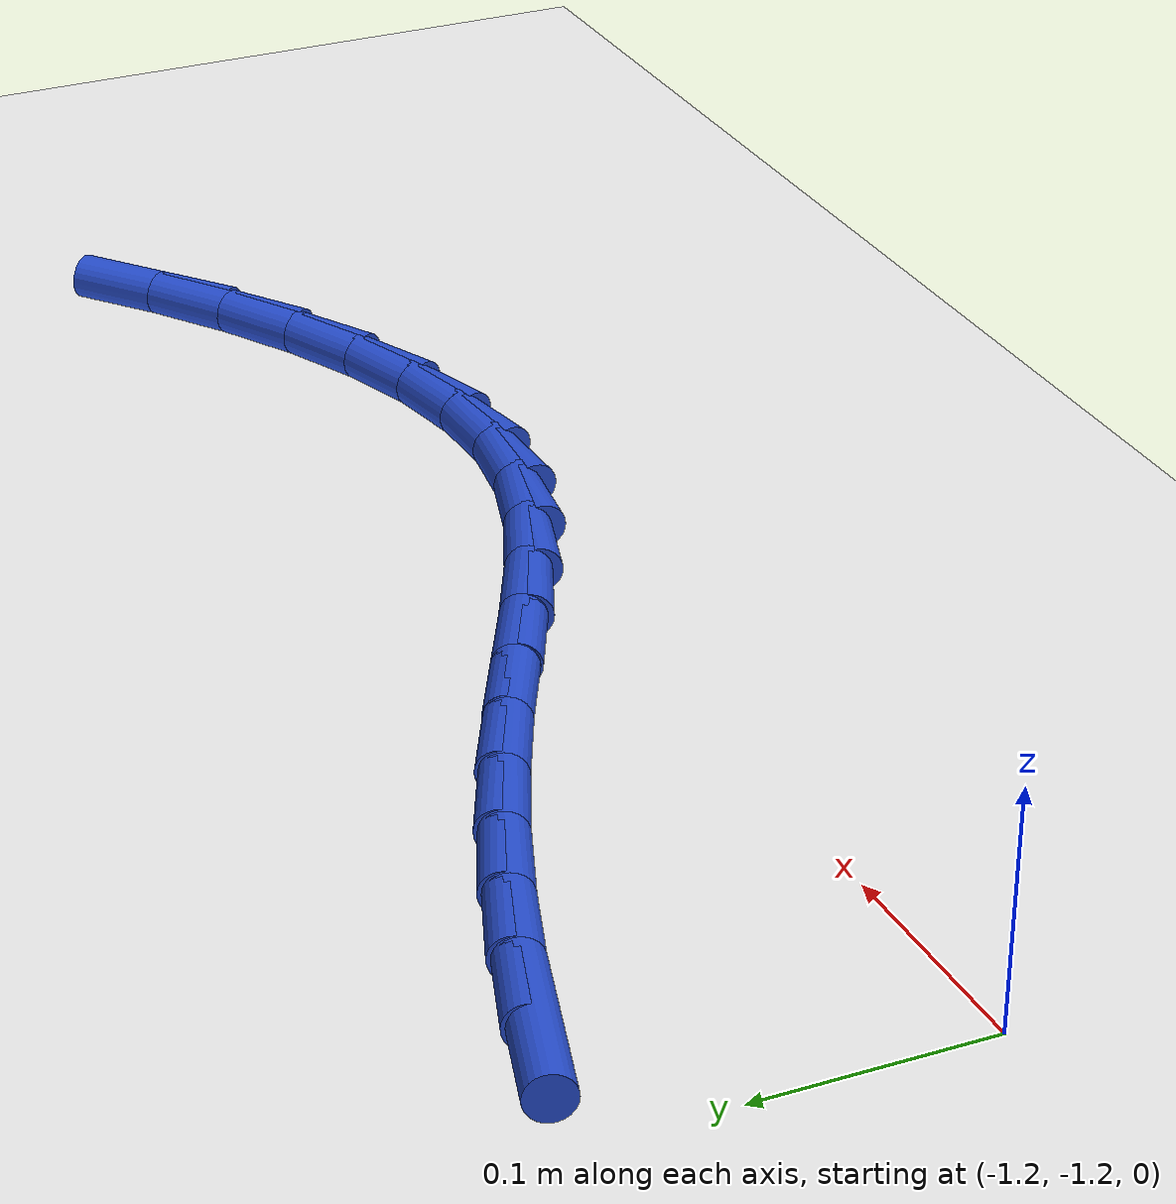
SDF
<sdf version="1.6">
 <world name="default">
  <model name="ground_plane">
   <static>1</static>
   <link name="link">
    <collision name="collision">
     <geometry><plane><normal>0 0 1</normal><size>100 100</size></plane></geometry>
     <surface><friction><ode><mu>100</mu><mu2>50</mu2></ode></friction></surface>
    </collision>
    <visual name="visual">
     <cast_shadows>0</cast_shadows>
     <geometry><plane><normal>0 0 1</normal><size>100 100</size></plane></geometry>
     <material>
      <script><uri>file://media/materials/scripts/gazebo.material</uri><name>Gazebo/WhiteGlow</name></script>
     </material>
    </visual>
   </link>
  </model>
  <model name="line">
   <link name="link_160">
    <pose>-1.1444038742225364 -1.0483657323013544 0.01 0 1.57 -0.29845650169521504</pose>
    <collision name="collision">
     <geometry><cylinder><radius>0.01</radius><length>0.08</length></cylinder></geometry>
    </collision>
    <visual name="visual">
     <material>
      <script><name>Gazebo/Blue</name><uri>file://media/materials/scripts/gazebo.material</uri></script>
     </material>
     <geometry><cylinder><radius>0.01</radius><length>0.08</length></cylinder></geometry>
    </visual>
   </link>
   <link name="link_161">
    <pose>-1.1059138109750464 -1.060207040963568 0.01 0 1.57 -0.3410235787235625</pose>
    <collision name="collision">
     <geometry><cylinder><radius>0.01</radius><length>0.08</length></cylinder></geometry>
    </collision>
    <visual name="visual">
     <material>
      <script><name>Gazebo/Blue</name><uri>file://media/materials/scripts/gazebo.material</uri></script>
     </material>
     <geometry><cylinder><radius>0.01</radius><length>0.08</length></cylinder></geometry>
    </visual>
   </link>
   <link name="link_162">
    <pose>-1.0678184212207056 -1.0737266740041995 0.01 0 1.57 -0.382345589905965</pose>
    <collision name="collision">
     <geometry><cylinder><radius>0.01</radius><length>0.08</length></cylinder></geometry>
    </collision>
    <visual name="visual">
     <material>
      <script><name>Gazebo/Blue</name><uri>file://media/materials/scripts/gazebo.material</uri></script>
     </material>
     <geometry><cylinder><radius>0.01</radius><length>0.08</length></cylinder></geometry>
    </visual>
   </link>
   <link name="link_163">
    <pose>-1.0302165991503087 -1.0888476849778304 0.01 0 1.57 -0.4226568550250067</pose>
    <collision name="collision">
     <geometry><cylinder><radius>0.01</radius><length>0.08</length></cylinder></geometry>
    </collision>
    <visual name="visual">
     <material>
      <script><name>Gazebo/Blue</name><uri>file://media/materials/scripts/gazebo.material</uri></script>
     </material>
     <geometry><cylinder><radius>0.01</radius><length>0.08</length></cylinder></geometry>
    </visual>
   </link>
   <link name="link_164">
    <pose>-0.9932072389546497 -1.1054931274390412 0.01 0 1.57 -0.46219108326489755</pose>
    <collision name="collision">
     <geometry><cylinder><radius>0.01</radius><length>0.08</length></cylinder></geometry>
    </collision>
    <visual name="visual">
     <material>
      <script><name>Gazebo/Blue</name><uri>file://media/materials/scripts/gazebo.material</uri></script>
     </material>
     <geometry><cylinder><radius>0.01</radius><length>0.08</length></cylinder></geometry>
    </visual>
   </link>
   <link name="link_165">
    <pose>-0.9568892348245255 -1.1235860549424126 0.01 0 1.57 -0.4974892900605518</pose>
    <collision name="collision">
     <geometry><cylinder><radius>0.01</radius><length>0.08</length></cylinder></geometry>
    </collision>
    <visual name="visual">
     <material>
      <script><name>Gazebo/Blue</name><uri>file://media/materials/scripts/gazebo.material</uri></script>
     </material>
     <geometry><cylinder><radius>0.01</radius><length>0.08</length></cylinder></geometry>
    </visual>
   </link>
   <link name="link_166">
    <pose>-0.9213241792363805 -1.1428995490543186 0.01 0 1.57 -0.5067011302034502</pose>
    <collision name="collision">
     <geometry><cylinder><radius>0.01</radius><length>0.08</length></cylinder></geometry>
    </collision>
    <visual name="visual">
     <material>
      <script><name>Gazebo/Blue</name><uri>file://media/materials/scripts/gazebo.material</uri></script>
     </material>
     <geometry><cylinder><radius>0.01</radius><length>0.08</length></cylinder></geometry>
    </visual>
   </link>
   <link name="link_167">
    <pose>-0.88635087868719 -1.1623109776489218 0.01 0 1.57 -0.4806680577424031</pose>
    <collision name="collision">
     <geometry><cylinder><radius>0.01</radius><length>0.08</length></cylinder></geometry>
    </collision>
    <visual name="visual">
     <material>
      <script><name>Gazebo/Blue</name><uri>file://media/materials/scripts/gazebo.material</uri></script>
     </material>
     <geometry><cylinder><radius>0.01</radius><length>0.08</length></cylinder></geometry>
    </visual>
   </link>
   <link name="link_168">
    <pose>-0.8517257822538628 -1.1803665896090378 0.01 0 1.57 -0.41587630026785727</pose>
    <collision name="collision">
     <geometry><cylinder><radius>0.01</radius><length>0.08</length></cylinder></geometry>
    </collision>
    <visual name="visual">
     <material>
      <script><name>Gazebo/Blue</name><uri>file://media/materials/scripts/gazebo.material</uri></script>
     </material>
     <geometry><cylinder><radius>0.01</radius><length>0.08</length></cylinder></geometry>
    </visual>
   </link>
   <link name="link_169">
    <pose>-0.8172052068217156 -1.1956121023396085 0.01 0 1.57 -0.3068217775104096</pose>
    <collision name="collision">
     <geometry><cylinder><radius>0.01</radius><length>0.08</length></cylinder></geometry>
    </collision>
    <visual name="visual">
     <material>
      <script><name>Gazebo/Blue</name><uri>file://media/materials/scripts/gazebo.material</uri></script>
     </material>
     <geometry><cylinder><radius>0.01</radius><length>0.08</length></cylinder></geometry>
    </visual>
   </link>
   <link name="link_170">
    <pose>-0.7825454692760663 -1.2065932332455778 0.01 0 1.57 -0.14993549009024013</pose>
    <collision name="collision">
     <geometry><cylinder><radius>0.01</radius><length>0.08</length></cylinder></geometry>
    </collision>
    <visual name="visual">
     <material>
      <script><name>Gazebo/Blue</name><uri>file://media/materials/scripts/gazebo.material</uri></script>
     </material>
     <geometry><cylinder><radius>0.01</radius><length>0.08</length></cylinder></geometry>
    </visual>
   </link>
   <link name="link_171">
    <pose>-0.7475103343860862 -1.2118859642808415 0.01 0 1.57 0.025940513310536553</pose>
    <collision name="collision">
     <geometry><cylinder><radius>0.01</radius><length>0.08</length></cylinder></geometry>
    </collision>
    <visual name="visual">
     <material>
      <script><name>Gazebo/Blue</name><uri>file://media/materials/scripts/gazebo.material</uri></script>
     </material>
     <geometry><cylinder><radius>0.01</radius><length>0.08</length></cylinder></geometry>
    </visual>
   </link>
   <link name="link_172">
    <pose>-0.7120851817579666 -1.210966811459202 0.01 0 1.57 0.18406373479950988</pose>
    <collision name="collision">
     <geometry><cylinder><radius>0.01</radius><length>0.08</length></cylinder></geometry>
    </collision>
    <visual name="visual">
     <material>
      <script><name>Gazebo/Blue</name><uri>file://media/materials/scripts/gazebo.material</uri></script>
     </material>
     <geometry><cylinder><radius>0.01</radius><length>0.08</length></cylinder></geometry>
    </visual>
   </link>
   <link name="link_173">
    <pose>-0.6765091873028257 -1.204343594564264 0.01 0 1.57 0.32018466435693804</pose>
    <collision name="collision">
     <geometry><cylinder><radius>0.01</radius><length>0.08</length></cylinder></geometry>
    </collision>
    <visual name="visual">
     <material>
      <script><name>Gazebo/Blue</name><uri>file://media/materials/scripts/gazebo.material</uri></script>
     </material>
     <geometry><cylinder><radius>0.01</radius><length>0.08</length></cylinder></geometry>
    </visual>
   </link>
   <link name="link_174">
    <pose>-0.6410354482261392 -1.1925807026955513 0.01 0 1.57 0.4354479550099726</pose>
    <collision name="collision">
     <geometry><cylinder><radius>0.01</radius><length>0.08</length></cylinder></geometry>
    </collision>
    <visual name="visual">
     <material>
      <script><name>Gazebo/Blue</name><uri>file://media/materials/scripts/gazebo.material</uri></script>
     </material>
     <geometry><cylinder><radius>0.01</radius><length>0.08</length></cylinder></geometry>
    </visual>
   </link>
   <link name="link_175">
    <pose>-0.6059170617333842 -1.176242524952589 0.01 0 1.57 0.532780688457206</pose>
    <collision name="collision">
     <geometry><cylinder><radius>0.01</radius><length>0.08</length></cylinder></geometry>
    </collision>
    <visual name="visual">
     <material>
      <script><name>Gazebo/Blue</name><uri>file://media/materials/scripts/gazebo.material</uri></script>
     </material>
     <geometry><cylinder><radius>0.01</radius><length>0.08</length></cylinder></geometry>
    </visual>
   </link>
   <link name="link_176">
    <pose>-0.5714071250300363 -1.1558934504348999 0.01 0 1.57 0.6155307772052564</pose>
    <collision name="collision">
     <geometry><cylinder><radius>0.01</radius><length>0.08</length></cylinder></geometry>
    </collision>
    <visual name="visual">
     <material>
      <script><name>Gazebo/Blue</name><uri>file://media/materials/scripts/gazebo.material</uri></script>
     </material>
     <geometry><cylinder><radius>0.01</radius><length>0.08</length></cylinder></geometry>
    </visual>
   </link>
   <link name="link_177">
    <pose>-0.5377587353215734 -1.1320978682420098 0.01 0 1.57 0.6868181910601642</pose>
    <collision name="collision">
     <geometry><cylinder><radius>0.01</radius><length>0.08</length></cylinder></geometry>
    </collision>
    <visual name="visual">
     <material>
      <script><name>Gazebo/Blue</name><uri>file://media/materials/scripts/gazebo.material</uri></script>
     </material>
     <geometry><cylinder><radius>0.01</radius><length>0.08</length></cylinder></geometry>
    </visual>
   </link>
  </model>
 </world>
</sdf>
